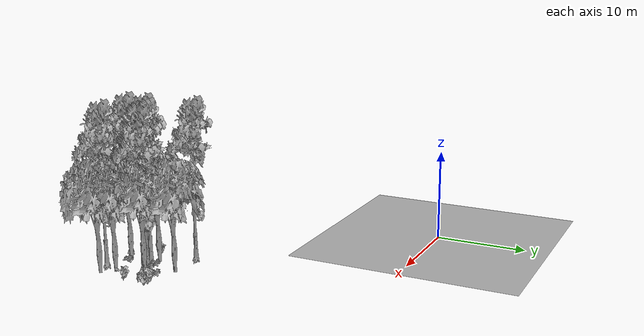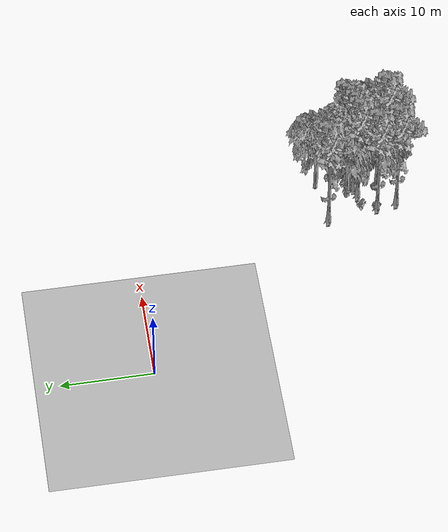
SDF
<sdf version="1.7">
 <world name="default">
  <model name="ground_plane">
   <static>1</static>
   <link name="link">
    <collision name="collision">
     <pose>-50 0 0 0 -0 0</pose>
     <geometry><plane><normal>0 0 1</normal><size>80 80</size></plane></geometry>
     <surface><contact><ode><min_depth>0.01</min_depth><max_vel>0</max_vel></ode></contact></surface>
    </collision>
    <visual name="grass">
     <cast_shadows>0</cast_shadows>
     <geometry>
      <mesh>
       <scale>0.46714285714285714 0.46714285714285714 0.1</scale>
       <uri>file://grass_plane/meshes/grass_plane.dae</uri>
      </mesh>
     </geometry>
    </visual>
   </link>
  </model>
  <model name="Tree 127">
   <static>1</static>
   <pose>22.284455792025696 -24.245730224371982 0 1.57079 -0 0</pose>
   <link name="link">
    <collision name="collision">
     <geometry><mesh><scale>3.5 5 3.5</scale><uri>model://tree_9/meshes/tree_9.obj</uri></mesh></geometry>
    </collision>
    <visual name="visual">
     <geometry><mesh><scale>3.5 5 3.5</scale><uri>model://tree_9/meshes/tree_9.obj</uri></mesh></geometry>
    </visual>
   </link>
  </model>
  <model name="Tree 138">
   <static>1</static>
   <pose>22.76308274385324 -28.78427733825341 0 1.57079 -0 0</pose>
   <link name="link">
    <collision name="collision">
     <geometry><mesh><scale>3.5 5 3.5</scale><uri>model://tree_9/meshes/tree_9.obj</uri></mesh></geometry>
    </collision>
    <visual name="visual">
     <geometry><mesh><scale>3.5 5 3.5</scale><uri>model://tree_9/meshes/tree_9.obj</uri></mesh></geometry>
    </visual>
   </link>
  </model>
  <model name="Tree 140">
   <static>1</static>
   <pose>19.92113629771754 -25.182092984090374 0 1.57079 -0 0</pose>
   <link name="link">
    <collision name="collision">
     <geometry><mesh><scale>3.5 5 3.5</scale><uri>model://tree_9/meshes/tree_9.obj</uri></mesh></geometry>
    </collision>
    <visual name="visual">
     <geometry><mesh><scale>3.5 5 3.5</scale><uri>model://tree_9/meshes/tree_9.obj</uri></mesh></geometry>
    </visual>
   </link>
  </model>
  <model name="Tree 176">
   <static>1</static>
   <pose>25.136595012684715 -27.603788927923077 0 1.57079 -0 0</pose>
   <link name="link">
    <collision name="collision">
     <geometry><mesh><scale>3.5 5 3.5</scale><uri>model://tree_2/meshes/tree_2.obj</uri></mesh></geometry>
    </collision>
    <visual name="visual">
     <geometry><mesh><scale>3.5 5 3.5</scale><uri>model://tree_2/meshes/tree_2.obj</uri></mesh></geometry>
    </visual>
   </link>
  </model>
  <model name="Tree 242">
   <static>1</static>
   <pose>20.94245339509454 -24.94745238118857 0 1.57079 -0 0</pose>
   <link name="link">
    <collision name="collision">
     <geometry><mesh><scale>3.5 5 3.5</scale><uri>model://tree_9/meshes/tree_9.obj</uri></mesh></geometry>
    </collision>
    <visual name="visual">
     <geometry><mesh><scale>3.5 5 3.5</scale><uri>model://tree_9/meshes/tree_9.obj</uri></mesh></geometry>
    </visual>
   </link>
  </model>
  <model name="Tree 317">
   <static>1</static>
   <pose>20.406090802409608 -27.338795716385782 0 1.57079 -0 0</pose>
   <link name="link">
    <collision name="collision">
     <geometry><mesh><scale>3.5 5 3.5</scale><uri>model://tree_2/meshes/tree_2.obj</uri></mesh></geometry>
    </collision>
    <visual name="visual">
     <geometry><mesh><scale>3.5 5 3.5</scale><uri>model://tree_2/meshes/tree_2.obj</uri></mesh></geometry>
    </visual>
   </link>
  </model>
  <model name="Tree 341">
   <static>1</static>
   <pose>22.535867730748727 -24.000050971826454 0 1.57079 -0 0</pose>
   <link name="link">
    <collision name="collision">
     <geometry><mesh><scale>3.5 5 3.5</scale><uri>model://tree_2/meshes/tree_2.obj</uri></mesh></geometry>
    </collision>
    <visual name="visual">
     <geometry><mesh><scale>3.5 5 3.5</scale><uri>model://tree_2/meshes/tree_2.obj</uri></mesh></geometry>
    </visual>
   </link>
  </model>
  <model name="Tree 348">
   <static>1</static>
   <pose>18.262687403728947 -29.154753410139314 0 1.57079 -0 0</pose>
   <link name="link">
    <collision name="collision">
     <geometry><mesh><scale>3.5 5 3.5</scale><uri>model://tree_9/meshes/tree_9.obj</uri></mesh></geometry>
    </collision>
    <visual name="visual">
     <geometry><mesh><scale>3.5 5 3.5</scale><uri>model://tree_9/meshes/tree_9.obj</uri></mesh></geometry>
    </visual>
   </link>
  </model>
  <model name="Tree 384">
   <static>1</static>
   <pose>21.645063548253887 -20.83009685412148 0 1.57079 -0 0</pose>
   <link name="link">
    <collision name="collision">
     <geometry><mesh><scale>3.5 5 3.5</scale><uri>model://tree_2/meshes/tree_2.obj</uri></mesh></geometry>
    </collision>
    <visual name="visual">
     <geometry><mesh><scale>3.5 5 3.5</scale><uri>model://tree_2/meshes/tree_2.obj</uri></mesh></geometry>
    </visual>
   </link>
  </model>
  <model name="Tree 405">
   <static>1</static>
   <pose>21.82793323449657 -24.728384551556857 0 1.57079 -0 0</pose>
   <link name="link">
    <collision name="collision">
     <geometry><mesh><scale>3.5 5 3.5</scale><uri>model://tree_9/meshes/tree_9.obj</uri></mesh></geometry>
    </collision>
    <visual name="visual">
     <geometry><mesh><scale>3.5 5 3.5</scale><uri>model://tree_9/meshes/tree_9.obj</uri></mesh></geometry>
    </visual>
   </link>
  </model>
  <model name="Tree 441">
   <static>1</static>
   <pose>24.13600434685084 -26.405924186612417 0 1.57079 -0 0</pose>
   <link name="link">
    <collision name="collision">
     <geometry><mesh><scale>3.5 5 3.5</scale><uri>model://tree_2/meshes/tree_2.obj</uri></mesh></geometry>
    </collision>
    <visual name="visual">
     <geometry><mesh><scale>3.5 5 3.5</scale><uri>model://tree_2/meshes/tree_2.obj</uri></mesh></geometry>
    </visual>
   </link>
  </model>
  <model name="Tree 452">
   <static>1</static>
   <pose>17.898673441884306 -26.973156008552237 0 1.57079 -0 0</pose>
   <link name="link">
    <collision name="collision">
     <geometry><mesh><scale>3.5 5 3.5</scale><uri>model://tree_9/meshes/tree_9.obj</uri></mesh></geometry>
    </collision>
    <visual name="visual">
     <geometry><mesh><scale>3.5 5 3.5</scale><uri>model://tree_9/meshes/tree_9.obj</uri></mesh></geometry>
    </visual>
   </link>
  </model>
  <model name="Tree 541">
   <static>1</static>
   <pose>19.946375323462952 -23.993981557393653 0 1.57079 -0 0</pose>
   <link name="link">
    <collision name="collision">
     <geometry><mesh><scale>3.5 5 3.5</scale><uri>model://tree_2/meshes/tree_2.obj</uri></mesh></geometry>
    </collision>
    <visual name="visual">
     <geometry><mesh><scale>3.5 5 3.5</scale><uri>model://tree_2/meshes/tree_2.obj</uri></mesh></geometry>
    </visual>
   </link>
  </model>
  <model name="Tree 616">
   <static>1</static>
   <pose>17.03035007425673 -21.43596740983453 0 1.57079 -0 0</pose>
   <link name="link">
    <collision name="collision">
     <geometry><mesh><scale>3.5 5 3.5</scale><uri>model://tree_9/meshes/tree_9.obj</uri></mesh></geometry>
    </collision>
    <visual name="visual">
     <geometry><mesh><scale>3.5 5 3.5</scale><uri>model://tree_9/meshes/tree_9.obj</uri></mesh></geometry>
    </visual>
   </link>
  </model>
  <model name="Bush 28">
   <static>1</static>
   <pose>21.717220978055074 -24.090743198466065 0 1.57079 -0 0</pose>
   <link name="link">
    <collision name="collision">
     <geometry><mesh><scale>2 2 2</scale><uri>model://bush_2/meshes/bush_2.obj</uri></mesh></geometry>
     <surface><contact><collide_without_contact>false</collide_without_contact></contact></surface>
    </collision>
    <visual name="visual">
     <geometry><mesh><scale>2 2 2</scale><uri>model://bush_2/meshes/bush_2.obj</uri></mesh></geometry>
    </visual>
   </link>
  </model>
  <model name="Bush 308">
   <static>1</static>
   <pose>26.11527247206955 -21.465984442888384 0 1.57079 -0 0</pose>
   <link name="link">
    <collision name="collision">
     <geometry><mesh><scale>2 2 2</scale><uri>model://bush_1/meshes/bush_1.obj</uri></mesh></geometry>
     <surface><contact><collide_without_contact>false</collide_without_contact></contact></surface>
    </collision>
    <visual name="visual">
     <geometry><mesh><scale>2 2 2</scale><uri>model://bush_1/meshes/bush_1.obj</uri></mesh></geometry>
    </visual>
   </link>
  </model>
  <model name="Bush 354">
   <static>1</static>
   <pose>20.571820983158098 -24.183342146561415 0 1.57079 -0 0</pose>
   <link name="link">
    <collision name="collision">
     <geometry><mesh><scale>2 2 2</scale><uri>model://bush_2/meshes/bush_2.obj</uri></mesh></geometry>
     <surface><contact><collide_without_contact>false</collide_without_contact></contact></surface>
    </collision>
    <visual name="visual">
     <geometry><mesh><scale>2 2 2</scale><uri>model://bush_2/meshes/bush_2.obj</uri></mesh></geometry>
    </visual>
   </link>
  </model>
  <model name="Bush 375">
   <static>1</static>
   <pose>26.01447506286972 -24.060121560022285 0 1.57079 -0 0</pose>
   <link name="link">
    <collision name="collision">
     <geometry><mesh><scale>2 2 2</scale><uri>model://bush_0/meshes/bush_0.obj</uri></mesh></geometry>
     <surface><contact><collide_without_contact>false</collide_without_contact></contact></surface>
    </collision>
    <visual name="visual">
     <geometry><mesh><scale>2 2 2</scale><uri>model://bush_0/meshes/bush_0.obj</uri></mesh></geometry>
    </visual>
   </link>
  </model>
  <model name="Bush 383">
   <static>1</static>
   <pose>22.822663171917917 -22.517460831236484 0 1.57079 -0 0</pose>
   <link name="link">
    <collision name="collision">
     <geometry><mesh><scale>2 2 2</scale><uri>model://bush_2/meshes/bush_2.obj</uri></mesh></geometry>
     <surface><contact><collide_without_contact>false</collide_without_contact></contact></surface>
    </collision>
    <visual name="visual">
     <geometry><mesh><scale>2 2 2</scale><uri>model://bush_2/meshes/bush_2.obj</uri></mesh></geometry>
    </visual>
   </link>
  </model>
  <model name="Bush 397">
   <static>1</static>
   <pose>18.231005737113257 -27.03976886292881 0 1.57079 -0 0</pose>
   <link name="link">
    <collision name="collision">
     <geometry><mesh><scale>2 2 2</scale><uri>model://bush_2/meshes/bush_2.obj</uri></mesh></geometry>
     <surface><contact><collide_without_contact>false</collide_without_contact></contact></surface>
    </collision>
    <visual name="visual">
     <geometry><mesh><scale>2 2 2</scale><uri>model://bush_2/meshes/bush_2.obj</uri></mesh></geometry>
    </visual>
   </link>
  </model>
  <model name="Bush 436">
   <static>1</static>
   <pose>20.88585176803003 -27.432688324553354 0 1.57079 -0 0</pose>
   <link name="link">
    <collision name="collision">
     <geometry><mesh><scale>2 2 2</scale><uri>model://bush_2/meshes/bush_2.obj</uri></mesh></geometry>
     <surface><contact><collide_without_contact>false</collide_without_contact></contact></surface>
    </collision>
    <visual name="visual">
     <geometry><mesh><scale>2 2 2</scale><uri>model://bush_2/meshes/bush_2.obj</uri></mesh></geometry>
    </visual>
   </link>
  </model>
  <model name="Bush 465">
   <static>1</static>
   <pose>18.14369250549587 -25.276795665131367 0 1.57079 -0 0</pose>
   <link name="link">
    <collision name="collision">
     <geometry><mesh><scale>2 2 2</scale><uri>model://bush_4/meshes/bush_4.obj</uri></mesh></geometry>
     <surface><contact><collide_without_contact>false</collide_without_contact></contact></surface>
    </collision>
    <visual name="visual">
     <geometry><mesh><scale>2 2 2</scale><uri>model://bush_4/meshes/bush_4.obj</uri></mesh></geometry>
    </visual>
   </link>
  </model>
  <model name="Bush 615">
   <static>1</static>
   <pose>25.644484612263568 -21.289384953784065 0 1.57079 -0 0</pose>
   <link name="link">
    <collision name="collision">
     <geometry><mesh><scale>2 2 2</scale><uri>model://bush_0/meshes/bush_0.obj</uri></mesh></geometry>
     <surface><contact><collide_without_contact>false</collide_without_contact></contact></surface>
    </collision>
    <visual name="visual">
     <geometry><mesh><scale>2 2 2</scale><uri>model://bush_0/meshes/bush_0.obj</uri></mesh></geometry>
    </visual>
   </link>
  </model>
 </world>
</sdf>
